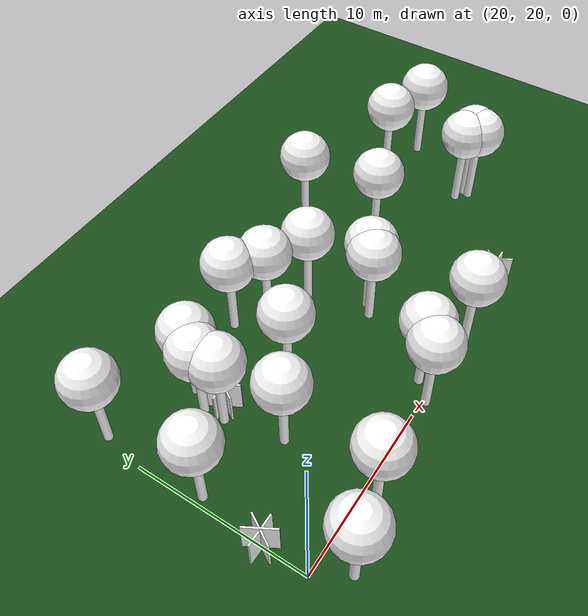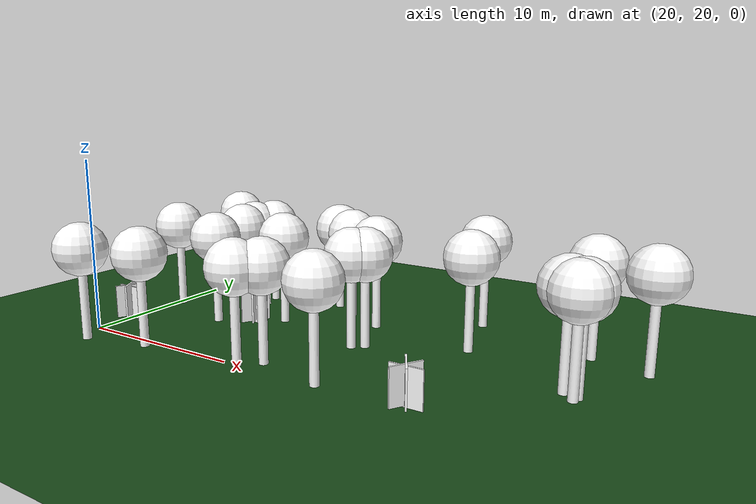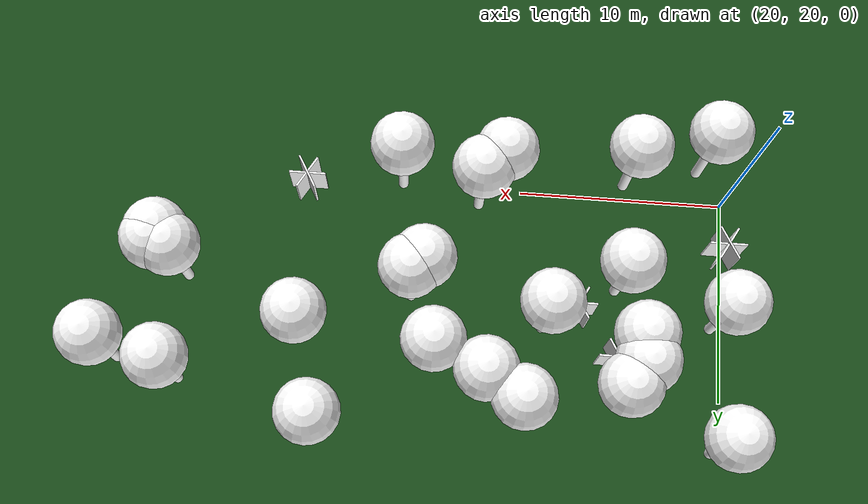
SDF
<sdf version="1.8">
 <world name="forest_world">
  <model name="fire_19">
   <pose>25.15 28.47 1.00 0 0 0.00</pose>
   <static>true</static>
   <link name="fire_link">
    <visual name="fire_19_fire_main_0">
     <geometry><box><size>1.80 0.10 2.00</size></box></geometry>
     <material>
      <ambient>0.7 0.35 0.0 1</ambient>
      <diffuse>1 1 1 1</diffuse>
      <specular>0 0 0 1</specular>
      <emissive>0 0 0 1</emissive>
      <pbr>
       <metal><albedo_map>textures/fire.png</albedo_map><metalness>0.0</metalness><roughness>0.6</roughness></metal>
      </pbr>
     </material>
     <transparency>0.0</transparency>
     <cast_shadows>false</cast_shadows>
    </visual>
    <visual name="fire_19_fire_60_1">
     <pose>0.00 0.00 0.10 0 0 1.05</pose>
     <geometry><box><size>1.80 0.10 2.00</size></box></geometry>
     <material>
      <ambient>0.7 0.35 0.0 1</ambient>
      <diffuse>1 1 1 1</diffuse>
      <specular>0 0 0 1</specular>
      <emissive>0 0 0 1</emissive>
      <pbr>
       <metal><albedo_map>textures/fire.png</albedo_map><metalness>0.0</metalness><roughness>0.6</roughness></metal>
      </pbr>
     </material>
     <transparency>0.0</transparency>
     <cast_shadows>false</cast_shadows>
    </visual>
    <visual name="fire_19_fire_120_2">
     <pose>0.00 0.00 0.20 0 0 2.09</pose>
     <geometry><box><size>1.80 0.10 2.00</size></box></geometry>
     <material>
      <ambient>0.7 0.35 0.0 1</ambient>
      <diffuse>1 1 1 1</diffuse>
      <specular>0 0 0 1</specular>
      <emissive>0 0 0 1</emissive>
      <pbr>
       <metal><albedo_map>textures/fire.png</albedo_map><metalness>0.0</metalness><roughness>0.6</roughness></metal>
      </pbr>
     </material>
     <transparency>0.0</transparency>
     <cast_shadows>false</cast_shadows>
    </visual>
    <light type="point" name="fire_19_light_0">
     <pose>0.40 0.00 0.50 0 0 0</pose>
     <diffuse>1.0 0.7 0.3 1</diffuse>
     <specular>1.0 0.8 0.3 1</specular>
     <intensity>2</intensity>
     <attenuation>
      <range>2</range>
      <constant>0.1</constant>
      <linear>0.05</linear>
      <quadratic>0.02</quadratic>
     </attenuation>
     <cast_shadows>false</cast_shadows>
    </light>
    <light type="point" name="fire_19_light_1">
     <pose>-0.20 0.35 0.50 0 0 0</pose>
     <diffuse>1.0 0.7 0.3 1</diffuse>
     <specular>1.0 0.8 0.3 1</specular>
     <intensity>2</intensity>
     <attenuation>
      <range>2</range>
      <constant>0.1</constant>
      <linear>0.05</linear>
      <quadratic>0.02</quadratic>
     </attenuation>
     <cast_shadows>false</cast_shadows>
    </light>
    <light type="point" name="fire_19_light_2">
     <pose>-0.20 -0.35 0.50 0 0 0</pose>
     <diffuse>1.0 0.7 0.3 1</diffuse>
     <specular>1.0 0.8 0.3 1</specular>
     <intensity>2</intensity>
     <attenuation>
      <range>2</range>
      <constant>0.1</constant>
      <linear>0.05</linear>
      <quadratic>0.02</quadratic>
     </attenuation>
     <cast_shadows>false</cast_shadows>
    </light>
   </link>
   <plugin filename="libignition-gazebo-pose-publisher-system.so" name="ignition::gazebo::systems::PosePublisher">
    <frame_id>world</frame_id>
    <publish_link_pose>true</publish_link_pose>
    <use_pose_vector_msg>true</use_pose_vector_msg>
    <static_publisher>true</static_publisher>
    <static_update_frequency>1</static_update_frequency>
   </plugin>
  </model>
  <model name="fire_31">
   <pose>27.08 26.01 1.00 0 0 0.00</pose>
   <static>true</static>
   <link name="fire_link">
    <visual name="fire_31_fire_main_0">
     <geometry><box><size>1.80 0.10 2.00</size></box></geometry>
     <material>
      <ambient>0.7 0.35 0.0 1</ambient>
      <diffuse>1 1 1 1</diffuse>
      <specular>0 0 0 1</specular>
      <emissive>0 0 0 1</emissive>
      <pbr>
       <metal><albedo_map>textures/fire.png</albedo_map><metalness>0.0</metalness><roughness>0.6</roughness></metal>
      </pbr>
     </material>
     <transparency>0.0</transparency>
     <cast_shadows>false</cast_shadows>
    </visual>
    <visual name="fire_31_fire_60_1">
     <pose>0.00 0.00 0.10 0 0 1.05</pose>
     <geometry><box><size>1.80 0.10 2.00</size></box></geometry>
     <material>
      <ambient>0.7 0.35 0.0 1</ambient>
      <diffuse>1 1 1 1</diffuse>
      <specular>0 0 0 1</specular>
      <emissive>0 0 0 1</emissive>
      <pbr>
       <metal><albedo_map>textures/fire.png</albedo_map><metalness>0.0</metalness><roughness>0.6</roughness></metal>
      </pbr>
     </material>
     <transparency>0.0</transparency>
     <cast_shadows>false</cast_shadows>
    </visual>
    <visual name="fire_31_fire_120_2">
     <pose>0.00 0.00 0.20 0 0 2.09</pose>
     <geometry><box><size>1.80 0.10 2.00</size></box></geometry>
     <material>
      <ambient>0.7 0.35 0.0 1</ambient>
      <diffuse>1 1 1 1</diffuse>
      <specular>0 0 0 1</specular>
      <emissive>0 0 0 1</emissive>
      <pbr>
       <metal><albedo_map>textures/fire.png</albedo_map><metalness>0.0</metalness><roughness>0.6</roughness></metal>
      </pbr>
     </material>
     <transparency>0.0</transparency>
     <cast_shadows>false</cast_shadows>
    </visual>
    <light type="point" name="fire_31_light_0">
     <pose>0.40 0.00 0.50 0 0 0</pose>
     <diffuse>1.0 0.7 0.3 1</diffuse>
     <specular>1.0 0.8 0.3 1</specular>
     <intensity>2</intensity>
     <attenuation>
      <range>2</range>
      <constant>0.1</constant>
      <linear>0.05</linear>
      <quadratic>0.02</quadratic>
     </attenuation>
     <cast_shadows>false</cast_shadows>
    </light>
    <light type="point" name="fire_31_light_1">
     <pose>-0.20 0.35 0.50 0 0 0</pose>
     <diffuse>1.0 0.7 0.3 1</diffuse>
     <specular>1.0 0.8 0.3 1</specular>
     <intensity>2</intensity>
     <attenuation>
      <range>2</range>
      <constant>0.1</constant>
      <linear>0.05</linear>
      <quadratic>0.02</quadratic>
     </attenuation>
     <cast_shadows>false</cast_shadows>
    </light>
    <light type="point" name="fire_31_light_2">
     <pose>-0.20 -0.35 0.50 0 0 0</pose>
     <diffuse>1.0 0.7 0.3 1</diffuse>
     <specular>1.0 0.8 0.3 1</specular>
     <intensity>2</intensity>
     <attenuation>
      <range>2</range>
      <constant>0.1</constant>
      <linear>0.05</linear>
      <quadratic>0.02</quadratic>
     </attenuation>
     <cast_shadows>false</cast_shadows>
    </light>
   </link>
   <plugin filename="libignition-gazebo-pose-publisher-system.so" name="ignition::gazebo::systems::PosePublisher">
    <frame_id>world</frame_id>
    <publish_link_pose>true</publish_link_pose>
    <use_pose_vector_msg>true</use_pose_vector_msg>
    <static_publisher>true</static_publisher>
    <static_update_frequency>1</static_update_frequency>
   </plugin>
  </model>
  <model name="fire_32">
   <pose>40.63 20.39 1.00 0 0 0.00</pose>
   <static>true</static>
   <link name="fire_link">
    <visual name="fire_32_fire_main_0">
     <geometry><box><size>1.80 0.10 2.00</size></box></geometry>
     <material>
      <ambient>0.7 0.35 0.0 1</ambient>
      <diffuse>1 1 1 1</diffuse>
      <specular>0 0 0 1</specular>
      <emissive>0 0 0 1</emissive>
      <pbr>
       <metal><albedo_map>textures/fire.png</albedo_map><metalness>0.0</metalness><roughness>0.6</roughness></metal>
      </pbr>
     </material>
     <transparency>0.0</transparency>
     <cast_shadows>false</cast_shadows>
    </visual>
    <visual name="fire_32_fire_60_1">
     <pose>0.00 0.00 0.10 0 0 1.05</pose>
     <geometry><box><size>1.80 0.10 2.00</size></box></geometry>
     <material>
      <ambient>0.7 0.35 0.0 1</ambient>
      <diffuse>1 1 1 1</diffuse>
      <specular>0 0 0 1</specular>
      <emissive>0 0 0 1</emissive>
      <pbr>
       <metal><albedo_map>textures/fire.png</albedo_map><metalness>0.0</metalness><roughness>0.6</roughness></metal>
      </pbr>
     </material>
     <transparency>0.0</transparency>
     <cast_shadows>false</cast_shadows>
    </visual>
    <visual name="fire_32_fire_120_2">
     <pose>0.00 0.00 0.20 0 0 2.09</pose>
     <geometry><box><size>1.80 0.10 2.00</size></box></geometry>
     <material>
      <ambient>0.7 0.35 0.0 1</ambient>
      <diffuse>1 1 1 1</diffuse>
      <specular>0 0 0 1</specular>
      <emissive>0 0 0 1</emissive>
      <pbr>
       <metal><albedo_map>textures/fire.png</albedo_map><metalness>0.0</metalness><roughness>0.6</roughness></metal>
      </pbr>
     </material>
     <transparency>0.0</transparency>
     <cast_shadows>false</cast_shadows>
    </visual>
    <light type="point" name="fire_32_light_0">
     <pose>0.40 0.00 0.50 0 0 0</pose>
     <diffuse>1.0 0.7 0.3 1</diffuse>
     <specular>1.0 0.8 0.3 1</specular>
     <intensity>2</intensity>
     <attenuation>
      <range>2</range>
      <constant>0.1</constant>
      <linear>0.05</linear>
      <quadratic>0.02</quadratic>
     </attenuation>
     <cast_shadows>false</cast_shadows>
    </light>
    <light type="point" name="fire_32_light_1">
     <pose>-0.20 0.35 0.50 0 0 0</pose>
     <diffuse>1.0 0.7 0.3 1</diffuse>
     <specular>1.0 0.8 0.3 1</specular>
     <intensity>2</intensity>
     <attenuation>
      <range>2</range>
      <constant>0.1</constant>
      <linear>0.05</linear>
      <quadratic>0.02</quadratic>
     </attenuation>
     <cast_shadows>false</cast_shadows>
    </light>
    <light type="point" name="fire_32_light_2">
     <pose>-0.20 -0.35 0.50 0 0 0</pose>
     <diffuse>1.0 0.7 0.3 1</diffuse>
     <specular>1.0 0.8 0.3 1</specular>
     <intensity>2</intensity>
     <attenuation>
      <range>2</range>
      <constant>0.1</constant>
      <linear>0.05</linear>
      <quadratic>0.02</quadratic>
     </attenuation>
     <cast_shadows>false</cast_shadows>
    </light>
   </link>
   <plugin filename="libignition-gazebo-pose-publisher-system.so" name="ignition::gazebo::systems::PosePublisher">
    <frame_id>world</frame_id>
    <publish_link_pose>true</publish_link_pose>
    <use_pose_vector_msg>true</use_pose_vector_msg>
    <static_publisher>true</static_publisher>
    <static_update_frequency>1</static_update_frequency>
   </plugin>
  </model>
  <model name="fire_49">
   <pose>19.97 22.53 1.00 0 0 0.00</pose>
   <static>true</static>
   <link name="fire_link">
    <visual name="fire_49_fire_main_0">
     <geometry><box><size>1.80 0.10 2.00</size></box></geometry>
     <material>
      <ambient>0.7 0.35 0.0 1</ambient>
      <diffuse>1 1 1 1</diffuse>
      <specular>0 0 0 1</specular>
      <emissive>0 0 0 1</emissive>
      <pbr>
       <metal><albedo_map>textures/fire.png</albedo_map><metalness>0.0</metalness><roughness>0.6</roughness></metal>
      </pbr>
     </material>
     <transparency>0.0</transparency>
     <cast_shadows>false</cast_shadows>
    </visual>
    <visual name="fire_49_fire_60_1">
     <pose>0.00 0.00 0.10 0 0 1.05</pose>
     <geometry><box><size>1.80 0.10 2.00</size></box></geometry>
     <material>
      <ambient>0.7 0.35 0.0 1</ambient>
      <diffuse>1 1 1 1</diffuse>
      <specular>0 0 0 1</specular>
      <emissive>0 0 0 1</emissive>
      <pbr>
       <metal><albedo_map>textures/fire.png</albedo_map><metalness>0.0</metalness><roughness>0.6</roughness></metal>
      </pbr>
     </material>
     <transparency>0.0</transparency>
     <cast_shadows>false</cast_shadows>
    </visual>
    <visual name="fire_49_fire_120_2">
     <pose>0.00 0.00 0.20 0 0 2.09</pose>
     <geometry><box><size>1.80 0.10 2.00</size></box></geometry>
     <material>
      <ambient>0.7 0.35 0.0 1</ambient>
      <diffuse>1 1 1 1</diffuse>
      <specular>0 0 0 1</specular>
      <emissive>0 0 0 1</emissive>
      <pbr>
       <metal><albedo_map>textures/fire.png</albedo_map><metalness>0.0</metalness><roughness>0.6</roughness></metal>
      </pbr>
     </material>
     <transparency>0.0</transparency>
     <cast_shadows>false</cast_shadows>
    </visual>
    <light type="point" name="fire_49_light_0">
     <pose>0.40 0.00 0.50 0 0 0</pose>
     <diffuse>1.0 0.7 0.3 1</diffuse>
     <specular>1.0 0.8 0.3 1</specular>
     <intensity>2</intensity>
     <attenuation>
      <range>2</range>
      <constant>0.1</constant>
      <linear>0.05</linear>
      <quadratic>0.02</quadratic>
     </attenuation>
     <cast_shadows>false</cast_shadows>
    </light>
    <light type="point" name="fire_49_light_1">
     <pose>-0.20 0.35 0.50 0 0 0</pose>
     <diffuse>1.0 0.7 0.3 1</diffuse>
     <specular>1.0 0.8 0.3 1</specular>
     <intensity>2</intensity>
     <attenuation>
      <range>2</range>
      <constant>0.1</constant>
      <linear>0.05</linear>
      <quadratic>0.02</quadratic>
     </attenuation>
     <cast_shadows>false</cast_shadows>
    </light>
    <light type="point" name="fire_49_light_2">
     <pose>-0.20 -0.35 0.50 0 0 0</pose>
     <diffuse>1.0 0.7 0.3 1</diffuse>
     <specular>1.0 0.8 0.3 1</specular>
     <intensity>2</intensity>
     <attenuation>
      <range>2</range>
      <constant>0.1</constant>
      <linear>0.05</linear>
      <quadratic>0.02</quadratic>
     </attenuation>
     <cast_shadows>false</cast_shadows>
    </light>
   </link>
   <plugin filename="libignition-gazebo-pose-publisher-system.so" name="ignition::gazebo::systems::PosePublisher">
    <frame_id>world</frame_id>
    <publish_link_pose>true</publish_link_pose>
    <use_pose_vector_msg>true</use_pose_vector_msg>
    <static_publisher>true</static_publisher>
    <static_update_frequency>1</static_update_frequency>
   </plugin>
  </model>
  <model name="tree_simple443">
   <static>1</static>
   <link name="link">
    <pose>0 0 0.1 0 -0 0</pose>
    <collision name="collision_trunk">
     <pose>0 0 2 0 -0 0</pose>
     <geometry><cylinder><radius>0.25</radius><length>4</length></cylinder></geometry>
    </collision>
    <collision name="collision_treetop">
     <pose>0 0 5.2 0 -0 0</pose>
     <geometry><sphere><radius>1.5</radius></sphere></geometry>
    </collision>
    <visual name="trunk">
     <pose>0 0 2 0 -0 0</pose>
     <geometry><cylinder><radius>0.25</radius><length>4</length></cylinder></geometry>
     <material>
      <ambient>0.5 0.5 0.5 1</ambient>
      <diffuse>1.0 1.0 1.0 1</diffuse>
      <specular>0.0 0.0 0.0 1</specular>
      <pbr>
       <metal>
        <albedo_map>../worlds/textures/tree_simple_trunk.jpg</albedo_map>
        <metalness>0.0</metalness>
        <roughness>0.8</roughness>
       </metal>
      </pbr>
     </material>
    </visual>
    <visual name="treetop">
     <pose>0 0 5.2 0 -0 0</pose>
     <geometry><sphere><radius>1.5</radius></sphere></geometry>
     <material>
      <ambient>0.5 0.5 0.5 1</ambient>
      <diffuse>1.0 1.0 1.0 1</diffuse>
      <specular>0.0 0.0 0.0 1</specular>
      <pbr>
       <metal>
        <albedo_map>../worlds/textures/tree_simple_treetop.jpg</albedo_map>
        <metalness>0.0</metalness>
        <roughness>0.9</roughness>
       </metal>
      </pbr>
     </material>
    </visual>
   </link>
   <pose>20.4518447393 32.4372971603 0 0 -0 0</pose>
  </model>
  <model name="tree_simple402">
   <static>1</static>
   <link name="link">
    <pose>0 0 0.1 0 -0 0</pose>
    <collision name="collision_trunk">
     <pose>0 0 2 0 -0 0</pose>
     <geometry><cylinder><radius>0.25</radius><length>4</length></cylinder></geometry>
    </collision>
    <collision name="collision_treetop">
     <pose>0 0 5.2 0 -0 0</pose>
     <geometry><sphere><radius>1.5</radius></sphere></geometry>
    </collision>
    <visual name="trunk">
     <pose>0 0 2 0 -0 0</pose>
     <geometry><cylinder><radius>0.25</radius><length>4</length></cylinder></geometry>
     <material>
      <ambient>0.5 0.5 0.5 1</ambient>
      <diffuse>1.0 1.0 1.0 1</diffuse>
      <specular>0.0 0.0 0.0 1</specular>
      <pbr>
       <metal>
        <albedo_map>../worlds/textures/tree_simple_trunk.jpg</albedo_map>
        <metalness>0.0</metalness>
        <roughness>0.8</roughness>
       </metal>
      </pbr>
     </material>
    </visual>
    <visual name="treetop">
     <pose>0 0 5.2 0 -0 0</pose>
     <geometry><sphere><radius>1.5</radius></sphere></geometry>
     <material>
      <ambient>0.5 0.5 0.5 1</ambient>
      <diffuse>1.0 1.0 1.0 1</diffuse>
      <specular>0.0 0.0 0.0 1</specular>
      <pbr>
       <metal>
        <albedo_map>../worlds/textures/tree_simple_treetop.jpg</albedo_map>
        <metalness>0.0</metalness>
        <roughness>0.9</roughness>
       </metal>
      </pbr>
     </material>
    </visual>
   </link>
   <pose>46.1530364681 25.5114731744 0 0 -0 0</pose>
  </model>
  <model name="tree_simple387">
   <static>1</static>
   <link name="link">
    <pose>0 0 0.1 0 -0 0</pose>
    <collision name="collision_trunk">
     <pose>0 0 2 0 -0 0</pose>
     <geometry><cylinder><radius>0.25</radius><length>4</length></cylinder></geometry>
    </collision>
    <collision name="collision_treetop">
     <pose>0 0 5.2 0 -0 0</pose>
     <geometry><sphere><radius>1.5</radius></sphere></geometry>
    </collision>
    <visual name="trunk">
     <pose>0 0 2 0 -0 0</pose>
     <geometry><cylinder><radius>0.25</radius><length>4</length></cylinder></geometry>
     <material>
      <ambient>0.5 0.5 0.5 1</ambient>
      <diffuse>1.0 1.0 1.0 1</diffuse>
      <specular>0.0 0.0 0.0 1</specular>
      <pbr>
       <metal>
        <albedo_map>../worlds/textures/tree_simple_trunk.jpg</albedo_map>
        <metalness>0.0</metalness>
        <roughness>0.8</roughness>
       </metal>
      </pbr>
     </material>
    </visual>
    <visual name="treetop">
     <pose>0 0 5.2 0 -0 0</pose>
     <geometry><sphere><radius>1.5</radius></sphere></geometry>
     <material>
      <ambient>0.5 0.5 0.5 1</ambient>
      <diffuse>1.0 1.0 1.0 1</diffuse>
      <specular>0.0 0.0 0.0 1</specular>
      <pbr>
       <metal>
        <albedo_map>../worlds/textures/tree_simple_treetop.jpg</albedo_map>
        <metalness>0.0</metalness>
        <roughness>0.9</roughness>
       </metal>
      </pbr>
     </material>
    </visual>
   </link>
   <pose>25.1584680938 24.780687948 0 0 -0 0</pose>
  </model>
  <model name="tree_simple345">
   <static>1</static>
   <link name="link">
    <pose>0 0 0.1 0 -0 0</pose>
    <collision name="collision_trunk">
     <pose>0 0 2 0 -0 0</pose>
     <geometry><cylinder><radius>0.25</radius><length>4</length></cylinder></geometry>
    </collision>
    <collision name="collision_treetop">
     <pose>0 0 5.2 0 -0 0</pose>
     <geometry><sphere><radius>1.5</radius></sphere></geometry>
    </collision>
    <visual name="trunk">
     <pose>0 0 2 0 -0 0</pose>
     <geometry><cylinder><radius>0.25</radius><length>4</length></cylinder></geometry>
     <material>
      <ambient>0.5 0.5 0.5 1</ambient>
      <diffuse>1.0 1.0 1.0 1</diffuse>
      <specular>0.0 0.0 0.0 1</specular>
      <pbr>
       <metal>
        <albedo_map>../worlds/textures/tree_simple_trunk.jpg</albedo_map>
        <metalness>0.0</metalness>
        <roughness>0.8</roughness>
       </metal>
      </pbr>
     </material>
    </visual>
    <visual name="treetop">
     <pose>0 0 5.2 0 -0 0</pose>
     <geometry><sphere><radius>1.5</radius></sphere></geometry>
     <material>
      <ambient>0.5 0.5 0.5 1</ambient>
      <diffuse>1.0 1.0 1.0 1</diffuse>
      <specular>0.0 0.0 0.0 1</specular>
      <pbr>
       <metal>
        <albedo_map>../worlds/textures/tree_simple_treetop.jpg</albedo_map>
        <metalness>0.0</metalness>
        <roughness>0.9</roughness>
       </metal>
      </pbr>
     </material>
    </visual>
   </link>
   <pose>28.6628994432 26.9095330542 0 0 -0 0</pose>
  </model>
  <model name="tree_simple335">
   <static>1</static>
   <link name="link">
    <pose>0 0 0.1 0 -0 0</pose>
    <collision name="collision_trunk">
     <pose>0 0 2 0 -0 0</pose>
     <geometry><cylinder><radius>0.25</radius><length>4</length></cylinder></geometry>
    </collision>
    <collision name="collision_treetop">
     <pose>0 0 5.2 0 -0 0</pose>
     <geometry><sphere><radius>1.5</radius></sphere></geometry>
    </collision>
    <visual name="trunk">
     <pose>0 0 2 0 -0 0</pose>
     <geometry><cylinder><radius>0.25</radius><length>4</length></cylinder></geometry>
     <material>
      <ambient>0.5 0.5 0.5 1</ambient>
      <diffuse>1.0 1.0 1.0 1</diffuse>
      <specular>0.0 0.0 0.0 1</specular>
      <pbr>
       <metal>
        <albedo_map>../worlds/textures/tree_simple_trunk.jpg</albedo_map>
        <metalness>0.0</metalness>
        <roughness>0.8</roughness>
       </metal>
      </pbr>
     </material>
    </visual>
    <visual name="treetop">
     <pose>0 0 5.2 0 -0 0</pose>
     <geometry><sphere><radius>1.5</radius></sphere></geometry>
     <material>
      <ambient>0.5 0.5 0.5 1</ambient>
      <diffuse>1.0 1.0 1.0 1</diffuse>
      <specular>0.0 0.0 0.0 1</specular>
      <pbr>
       <metal>
        <albedo_map>../worlds/textures/tree_simple_treetop.jpg</albedo_map>
        <metalness>0.0</metalness>
        <roughness>0.9</roughness>
       </metal>
      </pbr>
     </material>
    </visual>
   </link>
   <pose>34.5368026381 25.2759033923 0 0 -0 0</pose>
  </model>
  <model name="tree_simple332">
   <static>1</static>
   <link name="link">
    <pose>0 0 0.1 0 -0 0</pose>
    <collision name="collision_trunk">
     <pose>0 0 2 0 -0 0</pose>
     <geometry><cylinder><radius>0.25</radius><length>4</length></cylinder></geometry>
    </collision>
    <collision name="collision_treetop">
     <pose>0 0 5.2 0 -0 0</pose>
     <geometry><sphere><radius>1.5</radius></sphere></geometry>
    </collision>
    <visual name="trunk">
     <pose>0 0 2 0 -0 0</pose>
     <geometry><cylinder><radius>0.25</radius><length>4</length></cylinder></geometry>
     <material>
      <ambient>0.5 0.5 0.5 1</ambient>
      <diffuse>1.0 1.0 1.0 1</diffuse>
      <specular>0.0 0.0 0.0 1</specular>
      <pbr>
       <metal>
        <albedo_map>../worlds/textures/tree_simple_trunk.jpg</albedo_map>
        <metalness>0.0</metalness>
        <roughness>0.8</roughness>
       </metal>
      </pbr>
     </material>
    </visual>
    <visual name="treetop">
     <pose>0 0 5.2 0 -0 0</pose>
     <geometry><sphere><radius>1.5</radius></sphere></geometry>
     <material>
      <ambient>0.5 0.5 0.5 1</ambient>
      <diffuse>1.0 1.0 1.0 1</diffuse>
      <specular>0.0 0.0 0.0 1</specular>
      <pbr>
       <metal>
        <albedo_map>../worlds/textures/tree_simple_treetop.jpg</albedo_map>
        <metalness>0.0</metalness>
        <roughness>0.9</roughness>
       </metal>
      </pbr>
     </material>
    </visual>
   </link>
   <pose>39.1289157524 32.636662066 0 0 -0 0</pose>
  </model>
  <model name="tree_simple313">
   <static>1</static>
   <link name="link">
    <pose>0 0 0.1 0 -0 0</pose>
    <collision name="collision_trunk">
     <pose>0 0 2 0 -0 0</pose>
     <geometry><cylinder><radius>0.25</radius><length>4</length></cylinder></geometry>
    </collision>
    <collision name="collision_treetop">
     <pose>0 0 5.2 0 -0 0</pose>
     <geometry><sphere><radius>1.5</radius></sphere></geometry>
    </collision>
    <visual name="trunk">
     <pose>0 0 2 0 -0 0</pose>
     <geometry><cylinder><radius>0.25</radius><length>4</length></cylinder></geometry>
     <material>
      <ambient>0.5 0.5 0.5 1</ambient>
      <diffuse>1.0 1.0 1.0 1</diffuse>
      <specular>0.0 0.0 0.0 1</specular>
      <pbr>
       <metal>
        <albedo_map>../worlds/textures/tree_simple_trunk.jpg</albedo_map>
        <metalness>0.0</metalness>
        <roughness>0.8</roughness>
       </metal>
      </pbr>
     </material>
    </visual>
    <visual name="treetop">
     <pose>0 0 5.2 0 -0 0</pose>
     <geometry><sphere><radius>1.5</radius></sphere></geometry>
     <material>
      <ambient>0.5 0.5 0.5 1</ambient>
      <diffuse>1.0 1.0 1.0 1</diffuse>
      <specular>0.0 0.0 0.0 1</specular>
      <pbr>
       <metal>
        <albedo_map>../worlds/textures/tree_simple_treetop.jpg</albedo_map>
        <metalness>0.0</metalness>
        <roughness>0.9</roughness>
       </metal>
      </pbr>
     </material>
    </visual>
   </link>
   <pose>25.1046881591 30.4098930382 0 0 -0 0</pose>
  </model>
  <model name="tree_simple295">
   <static>1</static>
   <link name="link">
    <pose>0 0 0.1 0 -0 0</pose>
    <collision name="collision_trunk">
     <pose>0 0 2 0 -0 0</pose>
     <geometry><cylinder><radius>0.25</radius><length>4</length></cylinder></geometry>
    </collision>
    <collision name="collision_treetop">
     <pose>0 0 5.2 0 -0 0</pose>
     <geometry><sphere><radius>1.5</radius></sphere></geometry>
    </collision>
    <visual name="trunk">
     <pose>0 0 2 0 -0 0</pose>
     <geometry><cylinder><radius>0.25</radius><length>4</length></cylinder></geometry>
     <material>
      <ambient>0.5 0.5 0.5 1</ambient>
      <diffuse>1.0 1.0 1.0 1</diffuse>
      <specular>0.0 0.0 0.0 1</specular>
      <pbr>
       <metal>
        <albedo_map>../worlds/textures/tree_simple_trunk.jpg</albedo_map>
        <metalness>0.0</metalness>
        <roughness>0.8</roughness>
       </metal>
      </pbr>
     </material>
    </visual>
    <visual name="treetop">
     <pose>0 0 5.2 0 -0 0</pose>
     <geometry><sphere><radius>1.5</radius></sphere></geometry>
     <material>
      <ambient>0.5 0.5 0.5 1</ambient>
      <diffuse>1.0 1.0 1.0 1</diffuse>
      <specular>0.0 0.0 0.0 1</specular>
      <pbr>
       <metal>
        <albedo_map>../worlds/textures/tree_simple_treetop.jpg</albedo_map>
        <metalness>0.0</metalness>
        <roughness>0.9</roughness>
       </metal>
      </pbr>
     </material>
    </visual>
   </link>
   <pose>24.4545500201 28.0657933919 0 0 -0 0</pose>
  </model>
  <model name="tree_simple266">
   <static>1</static>
   <link name="link">
    <pose>0 0 0.1 0 -0 0</pose>
    <collision name="collision_trunk">
     <pose>0 0 2 0 -0 0</pose>
     <geometry><cylinder><radius>0.25</radius><length>4</length></cylinder></geometry>
    </collision>
    <collision name="collision_treetop">
     <pose>0 0 5.2 0 -0 0</pose>
     <geometry><sphere><radius>1.5</radius></sphere></geometry>
    </collision>
    <visual name="trunk">
     <pose>0 0 2 0 -0 0</pose>
     <geometry><cylinder><radius>0.25</radius><length>4</length></cylinder></geometry>
     <material>
      <ambient>0.5 0.5 0.5 1</ambient>
      <diffuse>1.0 1.0 1.0 1</diffuse>
      <specular>0.0 0.0 0.0 1</specular>
      <pbr>
       <metal>
        <albedo_map>../worlds/textures/tree_simple_trunk.jpg</albedo_map>
        <metalness>0.0</metalness>
        <roughness>0.8</roughness>
       </metal>
      </pbr>
     </material>
    </visual>
    <visual name="treetop">
     <pose>0 0 5.2 0 -0 0</pose>
     <geometry><sphere><radius>1.5</radius></sphere></geometry>
     <material>
      <ambient>0.5 0.5 0.5 1</ambient>
      <diffuse>1.0 1.0 1.0 1</diffuse>
      <specular>0.0 0.0 0.0 1</specular>
      <pbr>
       <metal>
        <albedo_map>../worlds/textures/tree_simple_treetop.jpg</albedo_map>
        <metalness>0.0</metalness>
        <roughness>0.9</roughness>
       </metal>
      </pbr>
     </material>
    </visual>
   </link>
   <pose>24.8758321483 19.2237149963 0 0 -0 0</pose>
  </model>
  <model name="tree_simple265">
   <static>1</static>
   <link name="link">
    <pose>0 0 0.1 0 -0 0</pose>
    <collision name="collision_trunk">
     <pose>0 0 2 0 -0 0</pose>
     <geometry><cylinder><radius>0.25</radius><length>4</length></cylinder></geometry>
    </collision>
    <collision name="collision_treetop">
     <pose>0 0 5.2 0 -0 0</pose>
     <geometry><sphere><radius>1.5</radius></sphere></geometry>
    </collision>
    <visual name="trunk">
     <pose>0 0 2 0 -0 0</pose>
     <geometry><cylinder><radius>0.25</radius><length>4</length></cylinder></geometry>
     <material>
      <ambient>0.5 0.5 0.5 1</ambient>
      <diffuse>1.0 1.0 1.0 1</diffuse>
      <specular>0.0 0.0 0.0 1</specular>
      <pbr>
       <metal>
        <albedo_map>../worlds/textures/tree_simple_trunk.jpg</albedo_map>
        <metalness>0.0</metalness>
        <roughness>0.8</roughness>
       </metal>
      </pbr>
     </material>
    </visual>
    <visual name="treetop">
     <pose>0 0 5.2 0 -0 0</pose>
     <geometry><sphere><radius>1.5</radius></sphere></geometry>
     <material>
      <ambient>0.5 0.5 0.5 1</ambient>
      <diffuse>1.0 1.0 1.0 1</diffuse>
      <specular>0.0 0.0 0.0 1</specular>
      <pbr>
       <metal>
        <albedo_map>../worlds/textures/tree_simple_treetop.jpg</albedo_map>
        <metalness>0.0</metalness>
        <roughness>0.9</roughness>
       </metal>
      </pbr>
     </material>
    </visual>
   </link>
   <pose>49.0905511153 29.866561196 0 0 -0 0</pose>
  </model>
  <model name="tree_simple260">
   <static>1</static>
   <link name="link">
    <pose>0 0 0.1 0 -0 0</pose>
    <collision name="collision_trunk">
     <pose>0 0 2 0 -0 0</pose>
     <geometry><cylinder><radius>0.25</radius><length>4</length></cylinder></geometry>
    </collision>
    <collision name="collision_treetop">
     <pose>0 0 5.2 0 -0 0</pose>
     <geometry><sphere><radius>1.5</radius></sphere></geometry>
    </collision>
    <visual name="trunk">
     <pose>0 0 2 0 -0 0</pose>
     <geometry><cylinder><radius>0.25</radius><length>4</length></cylinder></geometry>
     <material>
      <ambient>0.5 0.5 0.5 1</ambient>
      <diffuse>1.0 1.0 1.0 1</diffuse>
      <specular>0.0 0.0 0.0 1</specular>
      <pbr>
       <metal>
        <albedo_map>../worlds/textures/tree_simple_trunk.jpg</albedo_map>
        <metalness>0.0</metalness>
        <roughness>0.8</roughness>
       </metal>
      </pbr>
     </material>
    </visual>
    <visual name="treetop">
     <pose>0 0 5.2 0 -0 0</pose>
     <geometry><sphere><radius>1.5</radius></sphere></geometry>
     <material>
      <ambient>0.5 0.5 0.5 1</ambient>
      <diffuse>1.0 1.0 1.0 1</diffuse>
      <specular>0.0 0.0 0.0 1</specular>
      <pbr>
       <metal>
        <albedo_map>../worlds/textures/tree_simple_treetop.jpg</albedo_map>
        <metalness>0.0</metalness>
        <roughness>0.9</roughness>
       </metal>
      </pbr>
     </material>
    </visual>
   </link>
   <pose>20.4747246255 26.3739745209 0 0 -0 0</pose>
  </model>
  <model name="tree_simple258">
   <static>1</static>
   <link name="link">
    <pose>0 0 0.1 0 -0 0</pose>
    <collision name="collision_trunk">
     <pose>0 0 2 0 -0 0</pose>
     <geometry><cylinder><radius>0.25</radius><length>4</length></cylinder></geometry>
    </collision>
    <collision name="collision_treetop">
     <pose>0 0 5.2 0 -0 0</pose>
     <geometry><sphere><radius>1.5</radius></sphere></geometry>
    </collision>
    <visual name="trunk">
     <pose>0 0 2 0 -0 0</pose>
     <geometry><cylinder><radius>0.25</radius><length>4</length></cylinder></geometry>
     <material>
      <ambient>0.5 0.5 0.5 1</ambient>
      <diffuse>1.0 1.0 1.0 1</diffuse>
      <specular>0.0 0.0 0.0 1</specular>
      <pbr>
       <metal>
        <albedo_map>../worlds/textures/tree_simple_trunk.jpg</albedo_map>
        <metalness>0.0</metalness>
        <roughness>0.8</roughness>
       </metal>
      </pbr>
     </material>
    </visual>
    <visual name="treetop">
     <pose>0 0 5.2 0 -0 0</pose>
     <geometry><sphere><radius>1.5</radius></sphere></geometry>
     <material>
      <ambient>0.5 0.5 0.5 1</ambient>
      <diffuse>1.0 1.0 1.0 1</diffuse>
      <specular>0.0 0.0 0.0 1</specular>
      <pbr>
       <metal>
        <albedo_map>../worlds/textures/tree_simple_treetop.jpg</albedo_map>
        <metalness>0.0</metalness>
        <roughness>0.9</roughness>
       </metal>
      </pbr>
     </material>
    </visual>
   </link>
   <pose>24.3825797899 29.2966391115 0 0 -0 0</pose>
  </model>
  <model name="tree_simple238">
   <static>1</static>
   <link name="link">
    <pose>0 0 0.1 0 -0 0</pose>
    <collision name="collision_trunk">
     <pose>0 0 2 0 -0 0</pose>
     <geometry><cylinder><radius>0.25</radius><length>4</length></cylinder></geometry>
    </collision>
    <collision name="collision_treetop">
     <pose>0 0 5.2 0 -0 0</pose>
     <geometry><sphere><radius>1.5</radius></sphere></geometry>
    </collision>
    <visual name="trunk">
     <pose>0 0 2 0 -0 0</pose>
     <geometry><cylinder><radius>0.25</radius><length>4</length></cylinder></geometry>
     <material>
      <ambient>0.5 0.5 0.5 1</ambient>
      <diffuse>1.0 1.0 1.0 1</diffuse>
      <specular>0.0 0.0 0.0 1</specular>
      <pbr>
       <metal>
        <albedo_map>../worlds/textures/tree_simple_trunk.jpg</albedo_map>
        <metalness>0.0</metalness>
        <roughness>0.8</roughness>
       </metal>
      </pbr>
     </material>
    </visual>
    <visual name="treetop">
     <pose>0 0 5.2 0 -0 0</pose>
     <geometry><sphere><radius>1.5</radius></sphere></geometry>
     <material>
      <ambient>0.5 0.5 0.5 1</ambient>
      <diffuse>1.0 1.0 1.0 1</diffuse>
      <specular>0.0 0.0 0.0 1</specular>
      <pbr>
       <metal>
        <albedo_map>../worlds/textures/tree_simple_treetop.jpg</albedo_map>
        <metalness>0.0</metalness>
        <roughness>0.9</roughness>
       </metal>
      </pbr>
     </material>
    </visual>
   </link>
   <pose>46.8869167901 25.2834545483 0 0 -0 0</pose>
  </model>
  <model name="tree_simple219">
   <static>1</static>
   <link name="link">
    <pose>0 0 0.1 0 -0 0</pose>
    <collision name="collision_trunk">
     <pose>0 0 2 0 -0 0</pose>
     <geometry><cylinder><radius>0.25</radius><length>4</length></cylinder></geometry>
    </collision>
    <collision name="collision_treetop">
     <pose>0 0 5.2 0 -0 0</pose>
     <geometry><sphere><radius>1.5</radius></sphere></geometry>
    </collision>
    <visual name="trunk">
     <pose>0 0 2 0 -0 0</pose>
     <geometry><cylinder><radius>0.25</radius><length>4</length></cylinder></geometry>
     <material>
      <ambient>0.5 0.5 0.5 1</ambient>
      <diffuse>1.0 1.0 1.0 1</diffuse>
      <specular>0.0 0.0 0.0 1</specular>
      <pbr>
       <metal>
        <albedo_map>../worlds/textures/tree_simple_trunk.jpg</albedo_map>
        <metalness>0.0</metalness>
        <roughness>0.8</roughness>
       </metal>
      </pbr>
     </material>
    </visual>
    <visual name="treetop">
     <pose>0 0 5.2 0 -0 0</pose>
     <geometry><sphere><radius>1.5</radius></sphere></geometry>
     <material>
      <ambient>0.5 0.5 0.5 1</ambient>
      <diffuse>1.0 1.0 1.0 1</diffuse>
      <specular>0.0 0.0 0.0 1</specular>
      <pbr>
       <metal>
        <albedo_map>../worlds/textures/tree_simple_treetop.jpg</albedo_map>
        <metalness>0.0</metalness>
        <roughness>0.9</roughness>
       </metal>
      </pbr>
     </material>
    </visual>
   </link>
   <pose>32.089947678 20.7584358719 0 0 -0 0</pose>
  </model>
  <model name="tree_simple216">
   <static>1</static>
   <link name="link">
    <pose>0 0 0.1 0 -0 0</pose>
    <collision name="collision_trunk">
     <pose>0 0 2 0 -0 0</pose>
     <geometry><cylinder><radius>0.25</radius><length>4</length></cylinder></geometry>
    </collision>
    <collision name="collision_treetop">
     <pose>0 0 5.2 0 -0 0</pose>
     <geometry><sphere><radius>1.5</radius></sphere></geometry>
    </collision>
    <visual name="trunk">
     <pose>0 0 2 0 -0 0</pose>
     <geometry><cylinder><radius>0.25</radius><length>4</length></cylinder></geometry>
     <material>
      <ambient>0.5 0.5 0.5 1</ambient>
      <diffuse>1.0 1.0 1.0 1</diffuse>
      <specular>0.0 0.0 0.0 1</specular>
      <pbr>
       <metal>
        <albedo_map>../worlds/textures/tree_simple_trunk.jpg</albedo_map>
        <metalness>0.0</metalness>
        <roughness>0.8</roughness>
       </metal>
      </pbr>
     </material>
    </visual>
    <visual name="treetop">
     <pose>0 0 5.2 0 -0 0</pose>
     <geometry><sphere><radius>1.5</radius></sphere></geometry>
     <material>
      <ambient>0.5 0.5 0.5 1</ambient>
      <diffuse>1.0 1.0 1.0 1</diffuse>
      <specular>0.0 0.0 0.0 1</specular>
      <pbr>
       <metal>
        <albedo_map>../worlds/textures/tree_simple_treetop.jpg</albedo_map>
        <metalness>0.0</metalness>
        <roughness>0.9</roughness>
       </metal>
      </pbr>
     </material>
    </visual>
   </link>
   <pose>46.7848412988 24.905742282 0 0 -0 0</pose>
  </model>
  <model name="tree_simple190">
   <static>1</static>
   <link name="link">
    <pose>0 0 0.1 0 -0 0</pose>
    <collision name="collision_trunk">
     <pose>0 0 2 0 -0 0</pose>
     <geometry><cylinder><radius>0.25</radius><length>4</length></cylinder></geometry>
    </collision>
    <collision name="collision_treetop">
     <pose>0 0 5.2 0 -0 0</pose>
     <geometry><sphere><radius>1.5</radius></sphere></geometry>
    </collision>
    <visual name="trunk">
     <pose>0 0 2 0 -0 0</pose>
     <geometry><cylinder><radius>0.25</radius><length>4</length></cylinder></geometry>
     <material>
      <ambient>0.5 0.5 0.5 1</ambient>
      <diffuse>1.0 1.0 1.0 1</diffuse>
      <specular>0.0 0.0 0.0 1</specular>
      <pbr>
       <metal>
        <albedo_map>../worlds/textures/tree_simple_trunk.jpg</albedo_map>
        <metalness>0.0</metalness>
        <roughness>0.8</roughness>
       </metal>
      </pbr>
     </material>
    </visual>
    <visual name="treetop">
     <pose>0 0 5.2 0 -0 0</pose>
     <geometry><sphere><radius>1.5</radius></sphere></geometry>
     <material>
      <ambient>0.5 0.5 0.5 1</ambient>
      <diffuse>1.0 1.0 1.0 1</diffuse>
      <specular>0.0 0.0 0.0 1</specular>
      <pbr>
       <metal>
        <albedo_map>../worlds/textures/tree_simple_treetop.jpg</albedo_map>
        <metalness>0.0</metalness>
        <roughness>0.9</roughness>
       </metal>
      </pbr>
     </material>
    </visual>
   </link>
   <pose>33.8682165362 29.0192768916 0 0 -0 0</pose>
  </model>
  <model name="tree_simple188">
   <static>1</static>
   <link name="link">
    <pose>0 0 0.1 0 -0 0</pose>
    <collision name="collision_trunk">
     <pose>0 0 2 0 -0 0</pose>
     <geometry><cylinder><radius>0.25</radius><length>4</length></cylinder></geometry>
    </collision>
    <collision name="collision_treetop">
     <pose>0 0 5.2 0 -0 0</pose>
     <geometry><sphere><radius>1.5</radius></sphere></geometry>
    </collision>
    <visual name="trunk">
     <pose>0 0 2 0 -0 0</pose>
     <geometry><cylinder><radius>0.25</radius><length>4</length></cylinder></geometry>
     <material>
      <ambient>0.5 0.5 0.5 1</ambient>
      <diffuse>1.0 1.0 1.0 1</diffuse>
      <specular>0.0 0.0 0.0 1</specular>
      <pbr>
       <metal>
        <albedo_map>../worlds/textures/tree_simple_trunk.jpg</albedo_map>
        <metalness>0.0</metalness>
        <roughness>0.8</roughness>
       </metal>
      </pbr>
     </material>
    </visual>
    <visual name="treetop">
     <pose>0 0 5.2 0 -0 0</pose>
     <geometry><sphere><radius>1.5</radius></sphere></geometry>
     <material>
      <ambient>0.5 0.5 0.5 1</ambient>
      <diffuse>1.0 1.0 1.0 1</diffuse>
      <specular>0.0 0.0 0.0 1</specular>
      <pbr>
       <metal>
        <albedo_map>../worlds/textures/tree_simple_treetop.jpg</albedo_map>
        <metalness>0.0</metalness>
        <roughness>0.9</roughness>
       </metal>
      </pbr>
     </material>
    </visual>
   </link>
   <pose>31.0766060016 19.8231593676 0 0 -0 0</pose>
  </model>
  <model name="tree_simple150">
   <static>1</static>
   <link name="link">
    <pose>0 0 0.1 0 -0 0</pose>
    <collision name="collision_trunk">
     <pose>0 0 2 0 -0 0</pose>
     <geometry><cylinder><radius>0.25</radius><length>4</length></cylinder></geometry>
    </collision>
    <collision name="collision_treetop">
     <pose>0 0 5.2 0 -0 0</pose>
     <geometry><sphere><radius>1.5</radius></sphere></geometry>
    </collision>
    <visual name="trunk">
     <pose>0 0 2 0 -0 0</pose>
     <geometry><cylinder><radius>0.25</radius><length>4</length></cylinder></geometry>
     <material>
      <ambient>0.5 0.5 0.5 1</ambient>
      <diffuse>1.0 1.0 1.0 1</diffuse>
      <specular>0.0 0.0 0.0 1</specular>
      <pbr>
       <metal>
        <albedo_map>../worlds/textures/tree_simple_trunk.jpg</albedo_map>
        <metalness>0.0</metalness>
        <roughness>0.8</roughness>
       </metal>
      </pbr>
     </material>
    </visual>
    <visual name="treetop">
     <pose>0 0 5.2 0 -0 0</pose>
     <geometry><sphere><radius>1.5</radius></sphere></geometry>
     <material>
      <ambient>0.5 0.5 0.5 1</ambient>
      <diffuse>1.0 1.0 1.0 1</diffuse>
      <specular>0.0 0.0 0.0 1</specular>
      <pbr>
       <metal>
        <albedo_map>../worlds/textures/tree_simple_treetop.jpg</albedo_map>
        <metalness>0.0</metalness>
        <roughness>0.9</roughness>
       </metal>
      </pbr>
     </material>
    </visual>
   </link>
   <pose>40.1655547132 28.2074332225 0 0 -0 0</pose>
  </model>
  <model name="tree_simple131">
   <static>1</static>
   <link name="link">
    <pose>0 0 0.1 0 -0 0</pose>
    <collision name="collision_trunk">
     <pose>0 0 2 0 -0 0</pose>
     <geometry><cylinder><radius>0.25</radius><length>4</length></cylinder></geometry>
    </collision>
    <collision name="collision_treetop">
     <pose>0 0 5.2 0 -0 0</pose>
     <geometry><sphere><radius>1.5</radius></sphere></geometry>
    </collision>
    <visual name="trunk">
     <pose>0 0 2 0 -0 0</pose>
     <geometry><cylinder><radius>0.25</radius><length>4</length></cylinder></geometry>
     <material>
      <ambient>0.5 0.5 0.5 1</ambient>
      <diffuse>1.0 1.0 1.0 1</diffuse>
      <specular>0.0 0.0 0.0 1</specular>
      <pbr>
       <metal>
        <albedo_map>../worlds/textures/tree_simple_trunk.jpg</albedo_map>
        <metalness>0.0</metalness>
        <roughness>0.8</roughness>
       </metal>
      </pbr>
     </material>
    </visual>
    <visual name="treetop">
     <pose>0 0 5.2 0 -0 0</pose>
     <geometry><sphere><radius>1.5</radius></sphere></geometry>
     <material>
      <ambient>0.5 0.5 0.5 1</ambient>
      <diffuse>1.0 1.0 1.0 1</diffuse>
      <specular>0.0 0.0 0.0 1</specular>
      <pbr>
       <metal>
        <albedo_map>../worlds/textures/tree_simple_treetop.jpg</albedo_map>
        <metalness>0.0</metalness>
        <roughness>0.9</roughness>
       </metal>
      </pbr>
     </material>
    </visual>
   </link>
   <pose>46.034478037 30.677477771 0 0 -0 0</pose>
  </model>
  <model name="tree_simple97">
   <static>1</static>
   <link name="link">
    <pose>0 0 0.1 0 -0 0</pose>
    <collision name="collision_trunk">
     <pose>0 0 2 0 -0 0</pose>
     <geometry><cylinder><radius>0.25</radius><length>4</length></cylinder></geometry>
    </collision>
    <collision name="collision_treetop">
     <pose>0 0 5.2 0 -0 0</pose>
     <geometry><sphere><radius>1.5</radius></sphere></geometry>
    </collision>
    <visual name="trunk">
     <pose>0 0 2 0 -0 0</pose>
     <geometry><cylinder><radius>0.25</radius><length>4</length></cylinder></geometry>
     <material>
      <ambient>0.5 0.5 0.5 1</ambient>
      <diffuse>1.0 1.0 1.0 1</diffuse>
      <specular>0.0 0.0 0.0 1</specular>
      <pbr>
       <metal>
        <albedo_map>../worlds/textures/tree_simple_trunk.jpg</albedo_map>
        <metalness>0.0</metalness>
        <roughness>0.8</roughness>
       </metal>
      </pbr>
     </material>
    </visual>
    <visual name="treetop">
     <pose>0 0 5.2 0 -0 0</pose>
     <geometry><sphere><radius>1.5</radius></sphere></geometry>
     <material>
      <ambient>0.5 0.5 0.5 1</ambient>
      <diffuse>1.0 1.0 1.0 1</diffuse>
      <specular>0.0 0.0 0.0 1</specular>
      <pbr>
       <metal>
        <albedo_map>../worlds/textures/tree_simple_treetop.jpg</albedo_map>
        <metalness>0.0</metalness>
        <roughness>0.9</roughness>
       </metal>
      </pbr>
     </material>
    </visual>
   </link>
   <pose>31.4551659001 30.1710524081 0 0 -0 0</pose>
  </model>
  <model name="tree_simple47">
   <static>1</static>
   <link name="link">
    <pose>0 0 0.1 0 -0 0</pose>
    <collision name="collision_trunk">
     <pose>0 0 2 0 -0 0</pose>
     <geometry><cylinder><radius>0.25</radius><length>4</length></cylinder></geometry>
    </collision>
    <collision name="collision_treetop">
     <pose>0 0 5.2 0 -0 0</pose>
     <geometry><sphere><radius>1.5</radius></sphere></geometry>
    </collision>
    <visual name="trunk">
     <pose>0 0 2 0 -0 0</pose>
     <geometry><cylinder><radius>0.25</radius><length>4</length></cylinder></geometry>
     <material>
      <ambient>0.5 0.5 0.5 1</ambient>
      <diffuse>1.0 1.0 1.0 1</diffuse>
      <specular>0.0 0.0 0.0 1</specular>
      <pbr>
       <metal>
        <albedo_map>../worlds/textures/tree_simple_trunk.jpg</albedo_map>
        <metalness>0.0</metalness>
        <roughness>0.8</roughness>
       </metal>
      </pbr>
     </material>
    </visual>
    <visual name="treetop">
     <pose>0 0 5.2 0 -0 0</pose>
     <geometry><sphere><radius>1.5</radius></sphere></geometry>
     <material>
      <ambient>0.5 0.5 0.5 1</ambient>
      <diffuse>1.0 1.0 1.0 1</diffuse>
      <specular>0.0 0.0 0.0 1</specular>
      <pbr>
       <metal>
        <albedo_map>../worlds/textures/tree_simple_treetop.jpg</albedo_map>
        <metalness>0.0</metalness>
        <roughness>0.9</roughness>
       </metal>
      </pbr>
     </material>
    </visual>
   </link>
   <pose>29.7448798929 31.3110169918 0 0 -0 0</pose>
  </model>
  <model name="tree_simple46">
   <static>1</static>
   <link name="link">
    <pose>0 0 0.1 0 -0 0</pose>
    <collision name="collision_trunk">
     <pose>0 0 2 0 -0 0</pose>
     <geometry><cylinder><radius>0.25</radius><length>4</length></cylinder></geometry>
    </collision>
    <collision name="collision_treetop">
     <pose>0 0 5.2 0 -0 0</pose>
     <geometry><sphere><radius>1.5</radius></sphere></geometry>
    </collision>
    <visual name="trunk">
     <pose>0 0 2 0 -0 0</pose>
     <geometry><cylinder><radius>0.25</radius><length>4</length></cylinder></geometry>
     <material>
      <ambient>0.5 0.5 0.5 1</ambient>
      <diffuse>1.0 1.0 1.0 1</diffuse>
      <specular>0.0 0.0 0.0 1</specular>
      <pbr>
       <metal>
        <albedo_map>../worlds/textures/tree_simple_trunk.jpg</albedo_map>
        <metalness>0.0</metalness>
        <roughness>0.8</roughness>
       </metal>
      </pbr>
     </material>
    </visual>
    <visual name="treetop">
     <pose>0 0 5.2 0 -0 0</pose>
     <geometry><sphere><radius>1.5</radius></sphere></geometry>
     <material>
      <ambient>0.5 0.5 0.5 1</ambient>
      <diffuse>1.0 1.0 1.0 1</diffuse>
      <specular>0.0 0.0 0.0 1</specular>
      <pbr>
       <metal>
        <albedo_map>../worlds/textures/tree_simple_treetop.jpg</albedo_map>
        <metalness>0.0</metalness>
        <roughness>0.9</roughness>
       </metal>
      </pbr>
     </material>
    </visual>
   </link>
   <pose>35.9376574388 19.9099598652 0 0 -0 0</pose>
  </model>
  <model name="tree_simple44">
   <static>1</static>
   <link name="link">
    <pose>0 0 0.1 0 -0 0</pose>
    <collision name="collision_trunk">
     <pose>0 0 2 0 -0 0</pose>
     <geometry><cylinder><radius>0.25</radius><length>4</length></cylinder></geometry>
    </collision>
    <collision name="collision_treetop">
     <pose>0 0 5.2 0 -0 0</pose>
     <geometry><sphere><radius>1.5</radius></sphere></geometry>
    </collision>
    <visual name="trunk">
     <pose>0 0 2 0 -0 0</pose>
     <geometry><cylinder><radius>0.25</radius><length>4</length></cylinder></geometry>
     <material>
      <ambient>0.5 0.5 0.5 1</ambient>
      <diffuse>1.0 1.0 1.0 1</diffuse>
      <specular>0.0 0.0 0.0 1</specular>
      <pbr>
       <metal>
        <albedo_map>../worlds/textures/tree_simple_trunk.jpg</albedo_map>
        <metalness>0.0</metalness>
        <roughness>0.8</roughness>
       </metal>
      </pbr>
     </material>
    </visual>
    <visual name="treetop">
     <pose>0 0 5.2 0 -0 0</pose>
     <geometry><sphere><radius>1.5</radius></sphere></geometry>
     <material>
      <ambient>0.5 0.5 0.5 1</ambient>
      <diffuse>1.0 1.0 1.0 1</diffuse>
      <specular>0.0 0.0 0.0 1</specular>
      <pbr>
       <metal>
        <albedo_map>../worlds/textures/tree_simple_treetop.jpg</albedo_map>
        <metalness>0.0</metalness>
        <roughness>0.9</roughness>
       </metal>
      </pbr>
     </material>
    </visual>
   </link>
   <pose>35.1253684335 25.7534131059 0 0 -0 0</pose>
  </model>
  <model name="tree_simple20">
   <static>1</static>
   <link name="link">
    <pose>0 0 0.1 0 -0 0</pose>
    <collision name="collision_trunk">
     <pose>0 0 2 0 -0 0</pose>
     <geometry><cylinder><radius>0.25</radius><length>4</length></cylinder></geometry>
    </collision>
    <collision name="collision_treetop">
     <pose>0 0 5.2 0 -0 0</pose>
     <geometry><sphere><radius>1.5</radius></sphere></geometry>
    </collision>
    <visual name="trunk">
     <pose>0 0 2 0 -0 0</pose>
     <geometry><cylinder><radius>0.25</radius><length>4</length></cylinder></geometry>
     <material>
      <ambient>0.5 0.5 0.5 1</ambient>
      <diffuse>1.0 1.0 1.0 1</diffuse>
      <specular>0.0 0.0 0.0 1</specular>
      <pbr>
       <metal>
        <albedo_map>../worlds/textures/tree_simple_trunk.jpg</albedo_map>
        <metalness>0.0</metalness>
        <roughness>0.8</roughness>
       </metal>
      </pbr>
     </material>
    </visual>
    <visual name="treetop">
     <pose>0 0 5.2 0 -0 0</pose>
     <geometry><sphere><radius>1.5</radius></sphere></geometry>
     <material>
      <ambient>0.5 0.5 0.5 1</ambient>
      <diffuse>1.0 1.0 1.0 1</diffuse>
      <specular>0.0 0.0 0.0 1</specular>
      <pbr>
       <metal>
        <albedo_map>../worlds/textures/tree_simple_treetop.jpg</albedo_map>
        <metalness>0.0</metalness>
        <roughness>0.9</roughness>
       </metal>
      </pbr>
     </material>
    </visual>
   </link>
   <pose>21.1901136625 18.261917312 0 0 -0 0</pose>
  </model>
  <model name="ground_plane">
   <static>true</static>
   <link name="link">
    <collision name="collision">
     <geometry><mesh><uri>../worlds/textures/grass_plane.dae</uri><scale>1 1 1</scale></mesh></geometry>
     <surface><friction><ode><mu>1</mu><mu2>1</mu2></ode></friction></surface>
    </collision>
    <visual name="snow">
     <cast_shadows>false</cast_shadows>
     <geometry><mesh><uri>../worlds/textures/grass_plane.dae</uri><scale>1 1 1</scale></mesh></geometry>
     <material>
      <ambient>0.05 0.2 0.05 1</ambient>
      <diffuse>0.1 0.3 0.1 1</diffuse>
      <specular>0.05 0.05 0.05 1</specular>
     </material>
    </visual>
   </link>
  </model>
 </world>
</sdf>
